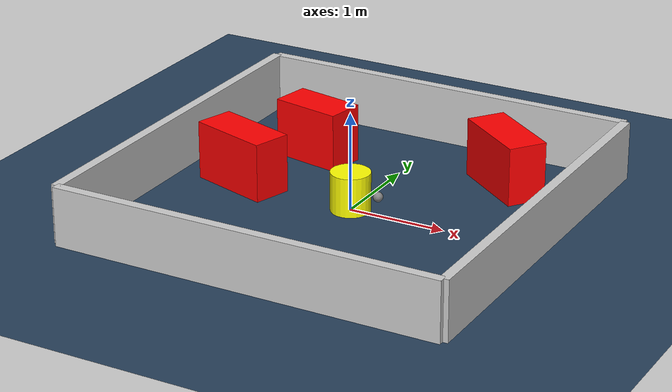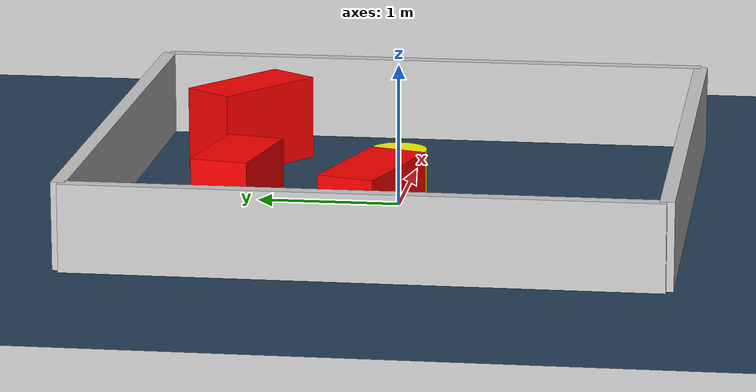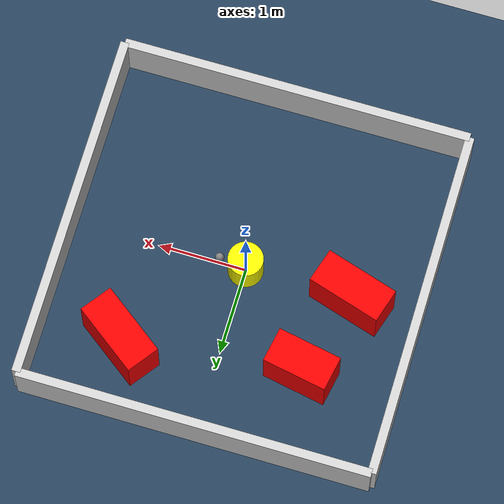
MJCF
<?xml version="1.0" ?>
<mujoco model="generated_environment">
  <option timestep="0.01" integrator="RK4" cone="elliptic"/>
  <default>
    <geom density="1"/>
  </default>
  <asset>
    <texture builtin="gradient" height="3072" rgb1="0.3 0.5 0.7" rgb2="0 0 0" type="skybox" width="512"/>
    <texture builtin="checker" height="300" mark="edge" markrgb="0.8 0.8 0.8" name="groundplane" rgb1="0.2 0.3 0.4" rgb2="0.1 0.2 0.3" type="2d" width="300"/>
    <material name="groundplane" reflectance="0.2" texrepeat="5 5" texture="groundplane" texuniform="true"/>
    <material name="robot" rgba="0.0 1.0 0.0 1"/>
  </asset>
  <worldbody>
    <light dir="0 0 -1" directional="true" pos="0 0 1.5"/>
    <geom condim="4" friction="1.0 0.005 0.001" material="groundplane" name="floor" size="0 0 0.05" type="plane"/>
    <body name="walls">
      <geom name="wall_1" condim="4" pos="-2.0 0.0 0.3" rgba="0.800000011920929 0.800000011920929 0.800000011920929 1.0" size="0.05 2.0 0.3" type="box"/>
      <geom name="wall_2" condim="4" pos="2.0 0.0 0.3" rgba="0.800000011920929 0.800000011920929 0.800000011920929 1.0" size="0.05 2.0 0.3" type="box"/>
      <geom name="wall_3" condim="4" pos="0.0 -2.0 0.3" rgba="0.800000011920929 0.800000011920929 0.800000011920929 1.0" size="2.0 0.05 0.3" type="box"/>
      <geom name="wall_4" condim="4" pos="0.0 2.0 0.3" rgba="0.800000011920929 0.800000011920929 0.800000011920929 1.0" size="2.0 0.05 0.3" type="box"/>
    </body>
    <body name="robot">
      <joint name="joint_x" type="slide" pos="0 0 0" axis="1 0 0"/>
      <joint name="joint_y" type="slide" pos="0 0 0" axis="0 1 0"/>
      <geom name="robot" type="sphere" pos="0.3 0.0 0.2" size="0.05" mass="5." friction="1.0 0.005 0.0001" condim="4" rgba="0.5 0.5 0.5 1.0"/>
      <site name="sensor_ball"/>
    </body>
    <body name="obstacle_movable_1">
      <geom name="obstacle_movable_1" condim="4" pos="0.0 0.0 0.2" euler="0 0 0.0" friction="1.0 0.005 0.001" rgba="1.0 1.0 0.0 1.0" size="0.2 0.2 0.0" type="cylinder" mass="0.1"/>
      <joint type="free"/>
    </body>
    <body name="obstacle_2_static">
      <geom name="obstacle_2_static" condim="4" pos="-1.226907610974156 0.02396850602366074 0.3" euler="0 0 163.02977657888798" friction="1.0 0.005 0.001" rgba="1 0 0 1" size="0.4299631306335748 0.2 0.3" type="box"/>
    </body>
    <body name="obstacle_3_static">
      <geom name="obstacle_3_static" condim="4" pos="-0.927934087551267 0.9867267536039346 0.3" euler="0 0 349.358279806173" friction="1.0 0.005 0.001" rgba="1 0 0 1" size="0.3696572642297275 0.2 0.3" type="box"/>
    </body>
    <body name="obstacle_4_static">
      <geom name="obstacle_4_static" condim="4" pos="1.0685432575821636 1.223649797449452 0.3" euler="0 0 143.48674379902965" friction="1.0 0.005 0.001" rgba="1 0 0 1" size="0.43703591830430494 0.2 0.3" type="box"/>
    </body>
  </worldbody>
  <actuator>
    <motor name="actuator_x" joint="joint_x" gear="1" ctrlrange="-1 1"/>
    <motor name="actuator_y" joint="joint_y" gear="1" ctrlrange="-1 1"/>
  </actuator>
</mujoco>
